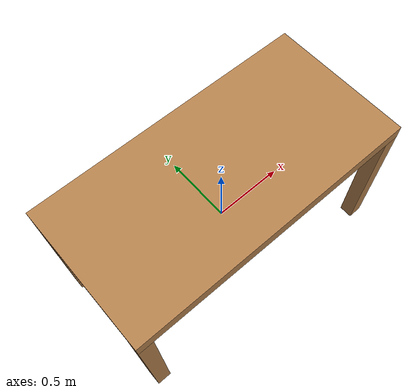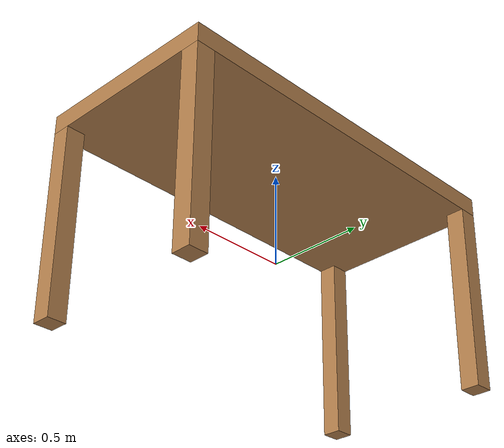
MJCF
<mujoco>
  <compiler meshdir="assets/meshes" texturedir="assets/textures" autolimits="true"/>

  <asset>

        <!-- wood  -->
        <texture  name="wood" type="2d" file="wood.png"/>
        <material name="wood" texture="wood" specular="0" shininess="0.25"/>

  </asset>

  <default>

        <!-- Leg -->
        <default class="table">
          <geom   type="box" size="0.05 0.05 0.5" material="wood"  />
        </default>

  </default>

  <worldbody>

      <body>

			<geom class="table"  pos="-0.95 -0.45 0"/>
			<geom class="table"  pos="0.95 -0.45 0"/>
			<geom class="table"  pos="-0.95 0.45 0"/>
			<geom class="table"  pos="0.95 0.45 0"/>
        	<!-- Table Top  -->
        	<geom type="box" pos="0 0 0.55" size="1 0.5 0.05" material="wood"  />
      </body>

  </worldbody>

</mujoco>
